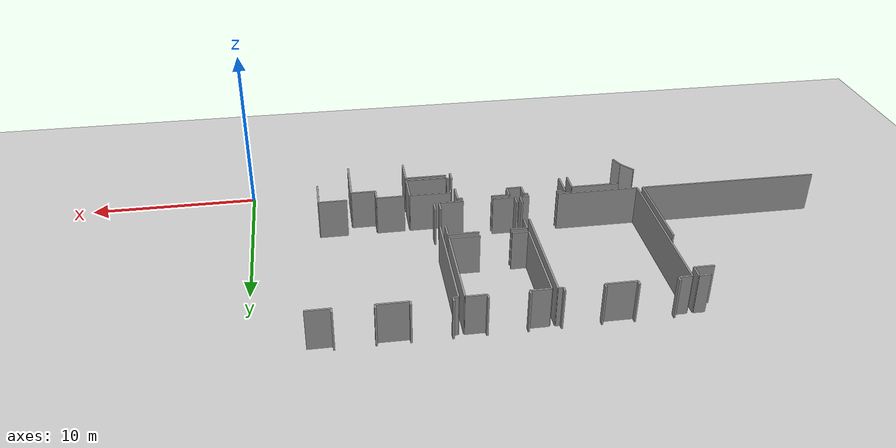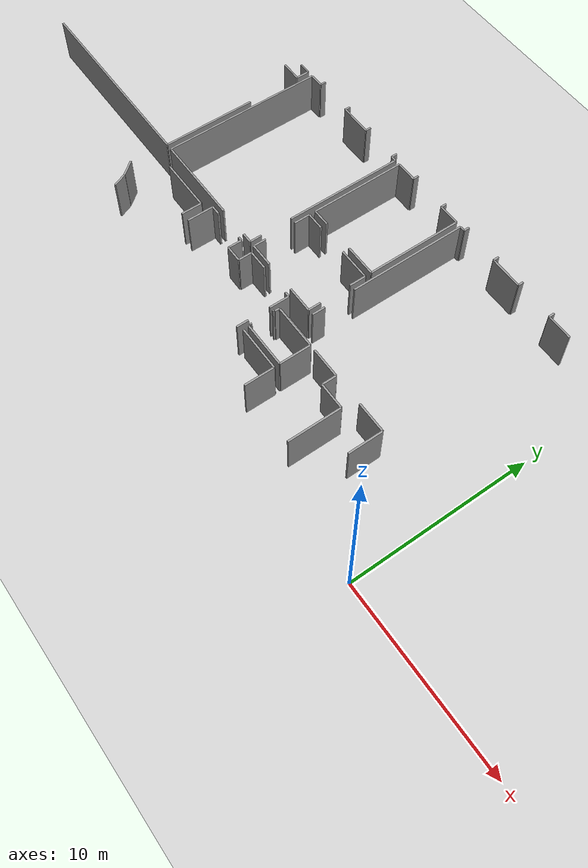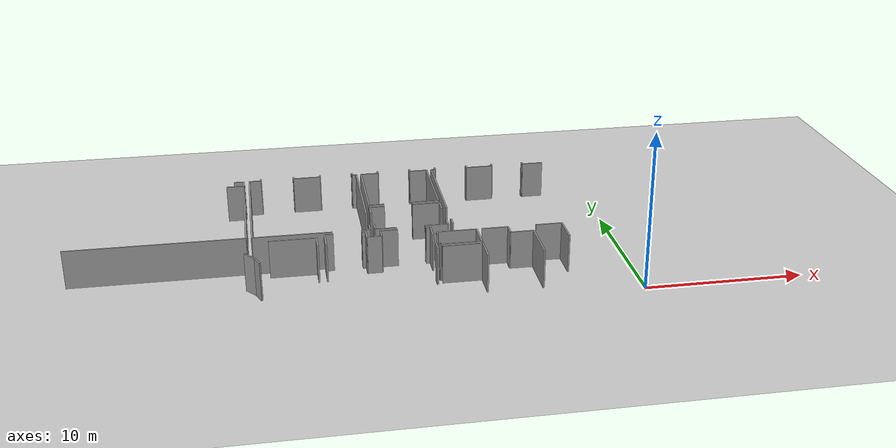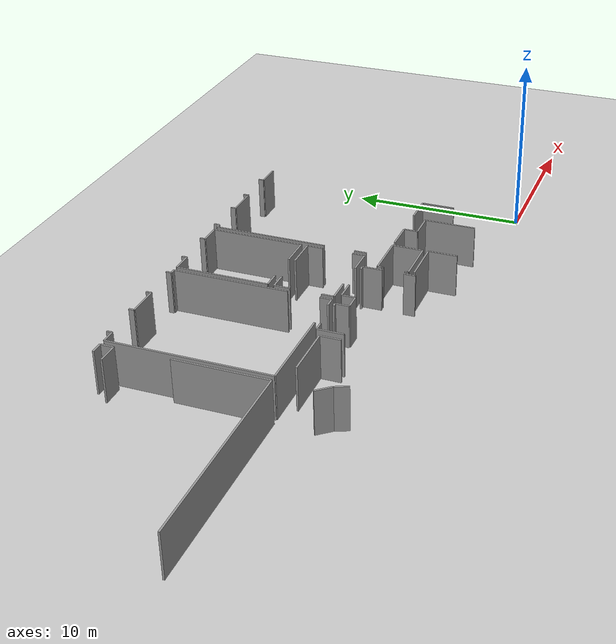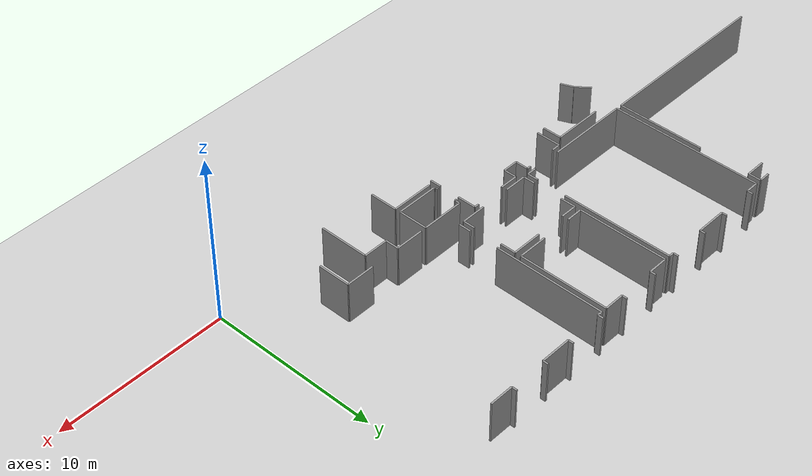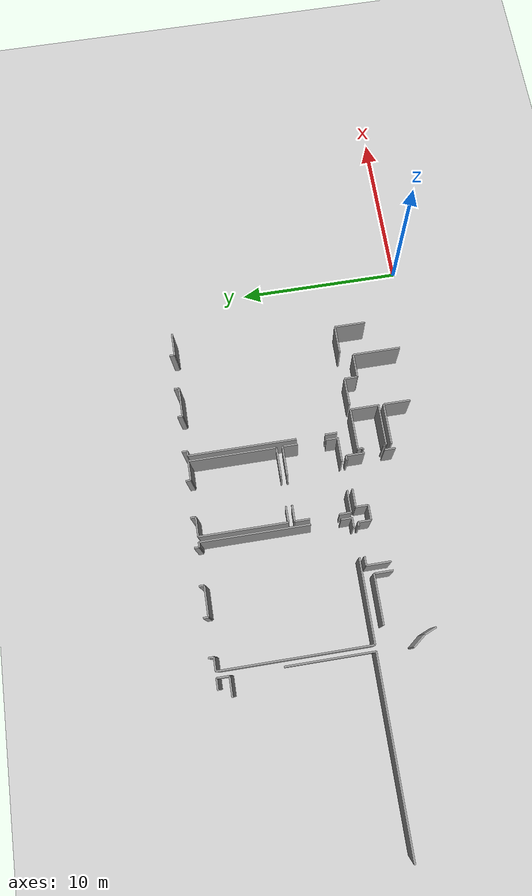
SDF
<sdf version="1.6">
 <world name="default">
  <model name="ground_plane">
   <static>1</static>
   <link name="link">
    <collision name="collision">
     <geometry><plane><normal>0 0 1</normal><size>100 100</size></plane></geometry>
     <surface><friction><ode><mu>100</mu><mu2>50</mu2></ode></friction></surface>
    </collision>
    <visual name="visual">
     <cast_shadows>0</cast_shadows>
     <geometry><plane><normal>0 0 1</normal><size>100 100</size></plane></geometry>
     <material>
      <script><uri>file://media/materials/scripts/gazebo.material</uri><name>Gazebo/Grey</name></script>
     </material>
    </visual>
   </link>
  </model>
  <model name="0510032270_A_40_1_104">
   <static>1</static>
   <link name="Wall_47">
    <collision name="Wall_47_Collision">
     <geometry><box><size>0.661016303036 0.1 2.5</size></box></geometry>
     <pose>0.330508151518 0 1.25 0 0 0</pose>
    </collision>
    <visual name="Wall_47_Visual">
     <pose>0.330508151518 0 1.25 0 0 0</pose>
     <geometry><box><size>0.661016303036 0.1 2.5</size></box></geometry>
     <material>
      <script><uri>file://media/materials/scripts/gazebo.material</uri><name>Gazebo/Grey</name></script>
      <ambient>1 1 1 1</ambient>
     </material>
    </visual>
    <pose>23.4142343418 -0.413230491632 0 0 0 0.0</pose>
   </link>
   <link name="Wall_48">
    <collision name="Wall_48_Collision">
     <geometry><box><size>0.73319186246 0.1 2.5</size></box></geometry>
     <pose>0.36659593123 0 1.25 0 0 0</pose>
    </collision>
    <visual name="Wall_48_Visual">
     <pose>0.36659593123 0 1.25 0 0 0</pose>
     <geometry><box><size>0.73319186246 0.1 2.5</size></box></geometry>
     <material>
      <script><uri>file://media/materials/scripts/gazebo.material</uri><name>Gazebo/Grey</name></script>
      <ambient>1 1 1 1</ambient>
     </material>
    </visual>
    <pose>24.0752506449 -0.413230491632 0 0 0 -1.57079632679</pose>
   </link>
   <link name="Wall_49">
    <collision name="Wall_49_Collision">
     <geometry><box><size>1.15951052772 0.1 2.5</size></box></geometry>
     <pose>0.57975526386 0 1.25 0 0 0</pose>
    </collision>
    <visual name="Wall_49_Visual">
     <pose>0.57975526386 0 1.25 0 0 0</pose>
     <geometry><box><size>1.15951052772 0.1 2.5</size></box></geometry>
     <material>
      <script><uri>file://media/materials/scripts/gazebo.material</uri><name>Gazebo/Grey</name></script>
      <ambient>1 1 1 1</ambient>
     </material>
    </visual>
    <pose>24.0752506449 -1.14642235409 0 0 0 3.14159265359</pose>
   </link>
   <link name="Wall_52">
    <collision name="Wall_52_Collision">
     <geometry><box><size>5.19791097501 0.1 2.5</size></box></geometry>
     <pose>2.5989554875 0 1.25 0 0 0</pose>
    </collision>
    <visual name="Wall_52_Visual">
     <pose>2.5989554875 0 1.25 0 0 0</pose>
     <geometry><box><size>5.19791097501 0.1 2.5</size></box></geometry>
     <material>
      <script><uri>file://media/materials/scripts/gazebo.material</uri><name>Gazebo/Grey</name></script>
      <ambient>1 1 1 1</ambient>
     </material>
    </visual>
    <pose>24.0824936148 -4.18783435201 0 0 0 -1.57079632679</pose>
   </link>
   <link name="Wall_53">
    <collision name="Wall_53_Collision">
     <geometry><box><size>10.9384093422 0.1 2.5</size></box></geometry>
     <pose>5.46920467108 0 1.25 0 0 0</pose>
    </collision>
    <visual name="Wall_53_Visual">
     <pose>5.46920467108 0 1.25 0 0 0</pose>
     <geometry><box><size>10.9384093422 0.1 2.5</size></box></geometry>
     <material>
      <script><uri>file://media/materials/scripts/gazebo.material</uri><name>Gazebo/Grey</name></script>
      <ambient>1 1 1 1</ambient>
     </material>
    </visual>
    <pose>24.0824936148 -9.38574532701 0 0 0 3.14159265359</pose>
   </link>
   <link name="Wall_148">
    <collision name="Wall_148_Collision">
     <geometry><box><size>0.954581897401 0.1 2.5</size></box></geometry>
     <pose>0.4772909487 0 1.25 0 0 0</pose>
    </collision>
    <visual name="Wall_148_Visual">
     <pose>0.4772909487 0 1.25 0 0 0</pose>
     <geometry><box><size>0.954581897401 0.1 2.5</size></box></geometry>
     <material>
      <script><uri>file://media/materials/scripts/gazebo.material</uri><name>Gazebo/Grey</name></script>
      <ambient>1 1 1 1</ambient>
     </material>
    </visual>
    <pose>23.9540262018 -11.498024067 0 0 0 -0.895182240225</pose>
   </link>
   <link name="Wall_149">
    <collision name="Wall_149_Collision">
     <geometry><box><size>0.768025617632 0.1 2.5</size></box></geometry>
     <pose>0.384012808816 0 1.25 0 0 0</pose>
    </collision>
    <visual name="Wall_149_Visual">
     <pose>0.384012808816 0 1.25 0 0 0</pose>
     <geometry><box><size>0.768025617632 0.1 2.5</size></box></geometry>
     <material>
      <script><uri>file://media/materials/scripts/gazebo.material</uri><name>Gazebo/Grey</name></script>
      <ambient>1 1 1 1</ambient>
     </material>
    </visual>
    <pose>24.5509994028 -12.242906337 0 0 0 -1.18024327878</pose>
   </link>
   <link name="Wall_166">
    <collision name="Wall_166_Collision">
     <geometry><box><size>8.96692377092 0.1 2.5</size></box></geometry>
     <pose>4.48346188546 0 1.25 0 0 0</pose>
    </collision>
    <visual name="Wall_166_Visual">
     <pose>4.48346188546 0 1.25 0 0 0</pose>
     <geometry><box><size>8.96692377092 0.1 2.5</size></box></geometry>
     <material>
      <script><uri>file://media/materials/scripts/gazebo.material</uri><name>Gazebo/Grey</name></script>
      <ambient>1 1 1 1</ambient>
     </material>
    </visual>
    <pose>24.4399405314 -9.38955741642 0 0 0 1.57079632679</pose>
   </link>
   <link name="Wall_167">
    <collision name="Wall_167_Collision">
     <geometry><box><size>0.775251915575 0.1 2.5</size></box></geometry>
     <pose>0.387625957787 0 1.25 0 0 0</pose>
    </collision>
    <visual name="Wall_167_Visual">
     <pose>0.387625957787 0 1.25 0 0 0</pose>
     <geometry><box><size>0.775251915575 0.1 2.5</size></box></geometry>
     <material>
      <script><uri>file://media/materials/scripts/gazebo.material</uri><name>Gazebo/Grey</name></script>
      <ambient>1 1 1 1</ambient>
     </material>
    </visual>
    <pose>24.4399405314 -0.422633645501 0 0 0 0.0</pose>
   </link>
   <link name="Wall_168">
    <collision name="Wall_168_Collision">
     <geometry><box><size>0.313989097424 0.1 2.5</size></box></geometry>
     <pose>0.156994548712 0 1.25 0 0 0</pose>
    </collision>
    <visual name="Wall_168_Visual">
     <pose>0.156994548712 0 1.25 0 0 0</pose>
     <geometry><box><size>0.313989097424 0.1 2.5</size></box></geometry>
     <material>
      <script><uri>file://media/materials/scripts/gazebo.material</uri><name>Gazebo/Grey</name></script>
      <ambient>1 1 1 1</ambient>
     </material>
    </visual>
    <pose>25.215192447 -0.422633645501 0 0 0 1.57079632679</pose>
   </link>
   <link name="Wall_169">
    <collision name="Wall_169_Collision">
     <geometry><box><size>0.300773854149 0.1 2.5</size></box></geometry>
     <pose>0.150386927075 0 1.25 0 0 0</pose>
    </collision>
    <visual name="Wall_169_Visual">
     <pose>0.150386927075 0 1.25 0 0 0</pose>
     <geometry><box><size>0.300773854149 0.1 2.5</size></box></geometry>
     <material>
      <script><uri>file://media/materials/scripts/gazebo.material</uri><name>Gazebo/Grey</name></script>
      <ambient>1 1 1 1</ambient>
     </material>
    </visual>
    <pose>27.4267125812 -0.108644548077 0 0 0 -1.57079632679</pose>
   </link>
   <link name="Wall_170">
    <collision name="Wall_170_Collision">
     <geometry><box><size>1.79549411032 0.1 2.5</size></box></geometry>
     <pose>0.897747055161 0 1.25 0 0 0</pose>
    </collision>
    <visual name="Wall_170_Visual">
     <pose>0.897747055161 0 1.25 0 0 0</pose>
     <geometry><box><size>1.79549411032 0.1 2.5</size></box></geometry>
     <material>
      <script><uri>file://media/materials/scripts/gazebo.material</uri><name>Gazebo/Grey</name></script>
      <ambient>1 1 1 1</ambient>
     </material>
    </visual>
    <pose>27.4267125812 -0.409418402226 0 0 0 0.0</pose>
   </link>
   <link name="Wall_171">
    <collision name="Wall_171_Collision">
     <geometry><box><size>0.301663341678 0.1 2.5</size></box></geometry>
     <pose>0.150831670839 0 1.25 0 0 0</pose>
    </collision>
    <visual name="Wall_171_Visual">
     <pose>0.150831670839 0 1.25 0 0 0</pose>
     <geometry><box><size>0.301663341678 0.1 2.5</size></box></geometry>
     <material>
      <script><uri>file://media/materials/scripts/gazebo.material</uri><name>Gazebo/Grey</name></script>
      <ambient>1 1 1 1</ambient>
     </material>
    </visual>
    <pose>29.2222066915 -0.409418402226 0 0 0 1.57079632679</pose>
   </link>
   <link name="Wall_172">
    <collision name="Wall_172_Collision">
     <geometry><box><size>0.301282132737 0.1 2.5</size></box></geometry>
     <pose>0.150641066368 0 1.25 0 0 0</pose>
    </collision>
    <visual name="Wall_172_Visual">
     <pose>0.150641066368 0 1.25 0 0 0</pose>
     <geometry><box><size>0.301282132737 0.1 2.5</size></box></geometry>
     <material>
      <script><uri>file://media/materials/scripts/gazebo.material</uri><name>Gazebo/Grey</name></script>
      <ambient>1 1 1 1</ambient>
     </material>
    </visual>
    <pose>31.4261026469 -0.107755060549 0 0 0 -1.57079632679</pose>
   </link>
   <link name="Wall_173">
    <collision name="Wall_173_Collision">
     <geometry><box><size>0.297724182624 0.1 2.5</size></box></geometry>
     <pose>0.148862091312 0 1.25 0 0 0</pose>
    </collision>
    <visual name="Wall_173_Visual">
     <pose>0.148862091312 0 1.25 0 0 0</pose>
     <geometry><box><size>0.297724182624 0.1 2.5</size></box></geometry>
     <material>
      <script><uri>file://media/materials/scripts/gazebo.material</uri><name>Gazebo/Grey</name></script>
      <ambient>1 1 1 1</ambient>
     </material>
    </visual>
    <pose>31.4261026469 -0.409037193286 0 0 0 0.0</pose>
   </link>
   <link name="Wall_174">
    <collision name="Wall_174_Collision">
     <geometry><box><size>6.54675527657 0.1 2.5</size></box></geometry>
     <pose>3.27337763828 0 1.25 0 0 0</pose>
    </collision>
    <visual name="Wall_174_Visual">
     <pose>3.27337763828 0 1.25 0 0 0</pose>
     <geometry><box><size>6.54675527657 0.1 2.5</size></box></geometry>
     <material>
      <script><uri>file://media/materials/scripts/gazebo.material</uri><name>Gazebo/Grey</name></script>
      <ambient>1 1 1 1</ambient>
     </material>
    </visual>
    <pose>31.7238268295 -0.409037193286 0 0 0 -1.57079632679</pose>
   </link>
   <link name="Wall_175">
    <collision name="Wall_175_Collision">
     <geometry><box><size>0.659237327979 0.1 2.5</size></box></geometry>
     <pose>0.32961866399 0 1.25 0 0 0</pose>
    </collision>
    <visual name="Wall_175_Visual">
     <pose>0.32961866399 0 1.25 0 0 0</pose>
     <geometry><box><size>0.659237327979 0.1 2.5</size></box></geometry>
     <material>
      <script><uri>file://media/materials/scripts/gazebo.material</uri><name>Gazebo/Grey</name></script>
      <ambient>1 1 1 1</ambient>
     </material>
    </visual>
    <pose>31.7238268295 -8.73476752608 0 0 0 -1.57079632679</pose>
   </link>
   <link name="Wall_176">
    <collision name="Wall_176_Collision">
     <geometry><box><size>0.567747182231 0.1 2.5</size></box></geometry>
     <pose>0.283873591115 0 1.25 0 0 0</pose>
    </collision>
    <visual name="Wall_176_Visual">
     <pose>0.283873591115 0 1.25 0 0 0</pose>
     <geometry><box><size>0.567747182231 0.1 2.5</size></box></geometry>
     <material>
      <script><uri>file://media/materials/scripts/gazebo.material</uri><name>Gazebo/Grey</name></script>
      <ambient>1 1 1 1</ambient>
     </material>
    </visual>
    <pose>31.7238268295 -9.39400485406 0 0 0 3.14159265359</pose>
   </link>
   <link name="Wall_177">
    <collision name="Wall_177_Collision">
     <geometry><box><size>4.93373518369 0.1 2.5</size></box></geometry>
     <pose>2.46686759185 0 1.25 0 0 0</pose>
    </collision>
    <visual name="Wall_177_Visual">
     <pose>2.46686759185 0 1.25 0 0 0</pose>
     <geometry><box><size>4.93373518369 0.1 2.5</size></box></geometry>
     <material>
      <script><uri>file://media/materials/scripts/gazebo.material</uri><name>Gazebo/Grey</name></script>
      <ambient>1 1 1 1</ambient>
     </material>
    </visual>
    <pose>29.3736737106 -9.39400485406 0 0 0 3.14069121927</pose>
   </link>
   <link name="Wall_178">
    <collision name="Wall_178_Collision">
     <geometry><box><size>0.976530236222 0.1 2.5</size></box></geometry>
     <pose>0.488265118111 0 1.25 0 0 0</pose>
    </collision>
    <visual name="Wall_178_Visual">
     <pose>0.488265118111 0 1.25 0 0 0</pose>
     <geometry><box><size>0.976530236222 0.1 2.5</size></box></geometry>
     <material>
      <script><uri>file://media/materials/scripts/gazebo.material</uri><name>Gazebo/Grey</name></script>
      <ambient>1 1 1 1</ambient>
     </material>
    </visual>
    <pose>32.0364181608 -6.06249285233 0 0 0 0.0</pose>
   </link>
   <link name="Wall_179">
    <collision name="Wall_179_Collision">
     <geometry><box><size>1.79041132445 0.1 2.5</size></box></geometry>
     <pose>0.895205662223 0 1.25 0 0 0</pose>
    </collision>
    <visual name="Wall_179_Visual">
     <pose>0.895205662223 0 1.25 0 0 0</pose>
     <geometry><box><size>1.79041132445 0.1 2.5</size></box></geometry>
     <material>
      <script><uri>file://media/materials/scripts/gazebo.material</uri><name>Gazebo/Grey</name></script>
      <ambient>1 1 1 1</ambient>
     </material>
    </visual>
    <pose>34.8277570937 -6.06249285233 0 0 0 0.0</pose>
   </link>
   <link name="Wall_180">
    <collision name="Wall_180_Collision">
     <geometry><box><size>0.907658487617 0.1 2.5</size></box></geometry>
     <pose>0.453829243809 0 1.25 0 0 0</pose>
    </collision>
    <visual name="Wall_180_Visual">
     <pose>0.453829243809 0 1.25 0 0 0</pose>
     <geometry><box><size>0.907658487617 0.1 2.5</size></box></geometry>
     <material>
      <script><uri>file://media/materials/scripts/gazebo.material</uri><name>Gazebo/Grey</name></script>
      <ambient>1 1 1 1</ambient>
     </material>
    </visual>
    <pose>36.6181684181 -6.06249285233 0 0 0 -1.57079632679</pose>
   </link>
   <link name="Wall_181">
    <collision name="Wall_181_Collision">
     <geometry><box><size>0.692656645107 0.1 2.5</size></box></geometry>
     <pose>0.346328322554 0 1.25 0 0 0</pose>
    </collision>
    <visual name="Wall_181_Visual">
     <pose>0.346328322554 0 1.25 0 0 0</pose>
     <geometry><box><size>0.692656645107 0.1 2.5</size></box></geometry>
     <material>
      <script><uri>file://media/materials/scripts/gazebo.material</uri><name>Gazebo/Grey</name></script>
      <ambient>1 1 1 1</ambient>
     </material>
    </visual>
    <pose>36.6181684181 -8.70274597507 0 0 0 -1.57079632679</pose>
   </link>
   <link name="Wall_182">
    <collision name="Wall_182_Collision">
     <geometry><box><size>1.4568535014 0.1 2.5</size></box></geometry>
     <pose>0.728426750702 0 1.25 0 0 0</pose>
    </collision>
    <visual name="Wall_182_Visual">
     <pose>0.728426750702 0 1.25 0 0 0</pose>
     <geometry><box><size>1.4568535014 0.1 2.5</size></box></geometry>
     <material>
      <script><uri>file://media/materials/scripts/gazebo.material</uri><name>Gazebo/Grey</name></script>
      <ambient>1 1 1 1</ambient>
     </material>
    </visual>
    <pose>36.6181684181 -9.39540262018 0 0 0 3.14159265359</pose>
   </link>
   <link name="Wall_183">
    <collision name="Wall_183_Collision">
     <geometry><box><size>1.33346887429 0.1 2.5</size></box></geometry>
     <pose>0.666734437145 0 1.25 0 0 0</pose>
    </collision>
    <visual name="Wall_183_Visual">
     <pose>0.666734437145 0 1.25 0 0 0</pose>
     <geometry><box><size>1.33346887429 0.1 2.5</size></box></geometry>
     <material>
      <script><uri>file://media/materials/scripts/gazebo.material</uri><name>Gazebo/Grey</name></script>
      <ambient>1 1 1 1</ambient>
     </material>
    </visual>
    <pose>33.3739532638 -9.39540262018 0 0 0 3.14159265359</pose>
   </link>
   <link name="Wall_184">
    <collision name="Wall_184_Collision">
     <geometry><box><size>0.694943898751 0.1 2.5</size></box></geometry>
     <pose>0.347471949375 0 1.25 0 0 0</pose>
    </collision>
    <visual name="Wall_184_Visual">
     <pose>0.347471949375 0 1.25 0 0 0</pose>
     <geometry><box><size>0.694943898751 0.1 2.5</size></box></geometry>
     <material>
      <script><uri>file://media/materials/scripts/gazebo.material</uri><name>Gazebo/Grey</name></script>
      <ambient>1 1 1 1</ambient>
     </material>
    </visual>
    <pose>32.0404843895 -9.39540262018 0 0 0 1.57079632679</pose>
   </link>
   <link name="Wall_185">
    <collision name="Wall_185_Collision">
     <geometry><box><size>0.893308872047 0.1 2.5</size></box></geometry>
     <pose>0.446654436023 0 1.25 0 0 0</pose>
    </collision>
    <visual name="Wall_185_Visual">
     <pose>0.446654436023 0 1.25 0 0 0</pose>
     <geometry><box><size>0.893308872047 0.1 2.5</size></box></geometry>
     <material>
      <script><uri>file://media/materials/scripts/gazebo.material</uri><name>Gazebo/Grey</name></script>
      <ambient>1 1 1 1</ambient>
     </material>
    </visual>
    <pose>32.0404843895 -6.95579246985 0 0 0 1.5753482157</pose>
   </link>
   <link name="Wall_186">
    <collision name="Wall_186_Collision">
     <geometry><box><size>5.27720243465 0.1 2.5</size></box></geometry>
     <pose>2.63860121733 0 1.25 0 0 0</pose>
    </collision>
    <visual name="Wall_186_Visual">
     <pose>2.63860121733 0 1.25 0 0 0</pose>
     <geometry><box><size>5.27720243465 0.1 2.5</size></box></geometry>
     <material>
      <script><uri>file://media/materials/scripts/gazebo.material</uri><name>Gazebo/Grey</name></script>
      <ambient>1 1 1 1</ambient>
     </material>
    </visual>
    <pose>32.0404843895 -5.69716761757 0 0 0 1.57079632679</pose>
   </link>
   <link name="Wall_187">
    <collision name="Wall_187_Collision">
     <geometry><box><size>1.17183628347 0.1 2.5</size></box></geometry>
     <pose>0.585918141733 0 1.25 0 0 0</pose>
    </collision>
    <visual name="Wall_187_Visual">
     <pose>0.585918141733 0 1.25 0 0 0</pose>
     <geometry><box><size>1.17183628347 0.1 2.5</size></box></geometry>
     <material>
      <script><uri>file://media/materials/scripts/gazebo.material</uri><name>Gazebo/Grey</name></script>
      <ambient>1 1 1 1</ambient>
     </material>
    </visual>
    <pose>32.0404843895 -0.419965182917 0 0 0 0.0</pose>
   </link>
   <link name="Wall_188">
    <collision name="Wall_188_Collision">
     <geometry><box><size>0.310177008018 0.1 2.5</size></box></geometry>
     <pose>0.155088504009 0 1.25 0 0 0</pose>
    </collision>
    <visual name="Wall_188_Visual">
     <pose>0.155088504009 0 1.25 0 0 0</pose>
     <geometry><box><size>0.310177008018 0.1 2.5</size></box></geometry>
     <material>
      <script><uri>file://media/materials/scripts/gazebo.material</uri><name>Gazebo/Grey</name></script>
      <ambient>1 1 1 1</ambient>
     </material>
    </visual>
    <pose>33.212320673 -0.419965182917 0 0 0 1.57079632679</pose>
   </link>
   <link name="Wall_189">
    <collision name="Wall_189_Collision">
     <geometry><box><size>0.302934038146 0.1 2.5</size></box></geometry>
     <pose>0.151467019073 0 1.25 0 0 0</pose>
    </collision>
    <visual name="Wall_189_Visual">
     <pose>0.151467019073 0 1.25 0 0 0</pose>
     <geometry><box><size>0.302934038146 0.1 2.5</size></box></geometry>
     <material>
      <script><uri>file://media/materials/scripts/gazebo.material</uri><name>Gazebo/Grey</name></script>
      <ambient>1 1 1 1</ambient>
     </material>
    </visual>
    <pose>35.4333710307 -0.109788174899 0 0 0 -1.57079632679</pose>
   </link>
   <link name="Wall_190">
    <collision name="Wall_190_Collision">
     <geometry><box><size>1.17780855687 0.1 2.5</size></box></geometry>
     <pose>0.588904278435 0 1.25 0 0 0</pose>
    </collision>
    <visual name="Wall_190_Visual">
     <pose>0.588904278435 0 1.25 0 0 0</pose>
     <geometry><box><size>1.17780855687 0.1 2.5</size></box></geometry>
     <material>
      <script><uri>file://media/materials/scripts/gazebo.material</uri><name>Gazebo/Grey</name></script>
      <ambient>1 1 1 1</ambient>
     </material>
    </visual>
    <pose>35.4333710307 -0.412722213045 0 0 0 0.0</pose>
   </link>
   <link name="Wall_191">
    <collision name="Wall_191_Collision">
     <geometry><box><size>5.27682122571 0.1 2.5</size></box></geometry>
     <pose>2.63841061286 0 1.25 0 0 0</pose>
    </collision>
    <visual name="Wall_191_Visual">
     <pose>2.63841061286 0 1.25 0 0 0</pose>
     <geometry><box><size>5.27682122571 0.1 2.5</size></box></geometry>
     <material>
      <script><uri>file://media/materials/scripts/gazebo.material</uri><name>Gazebo/Grey</name></script>
      <ambient>1 1 1 1</ambient>
     </material>
    </visual>
    <pose>36.6111795875 -0.412722213045 0 0 0 -1.57079632679</pose>
   </link>
   <link name="Wall_192">
    <collision name="Wall_192_Collision">
     <geometry><box><size>1.77783142941 0.1 2.5</size></box></geometry>
     <pose>0.888915714703 0 1.25 0 0 0</pose>
    </collision>
    <visual name="Wall_192_Visual">
     <pose>0.888915714703 0 1.25 0 0 0</pose>
     <geometry><box><size>1.77783142941 0.1 2.5</size></box></geometry>
     <material>
      <script><uri>file://media/materials/scripts/gazebo.material</uri><name>Gazebo/Grey</name></script>
      <ambient>1 1 1 1</ambient>
     </material>
    </visual>
    <pose>36.6111795875 -5.68954343876 0 0 0 3.14159265359</pose>
   </link>
   <link name="Wall_193">
    <collision name="Wall_193_Collision">
     <geometry><box><size>0.967919528043 0.1 2.5</size></box></geometry>
     <pose>0.483959764022 0 1.25 0 0 0</pose>
    </collision>
    <visual name="Wall_193_Visual">
     <pose>0.483959764022 0 1.25 0 0 0</pose>
     <geometry><box><size>0.967919528043 0.1 2.5</size></box></geometry>
     <material>
      <script><uri>file://media/materials/scripts/gazebo.material</uri><name>Gazebo/Grey</name></script>
      <ambient>1 1 1 1</ambient>
     </material>
    </visual>
    <pose>33.0083738897 -5.68954343876 0 0 0 -3.13371569953</pose>
   </link>
   <link name="Wall_194">
    <collision name="Wall_194_Collision">
     <geometry><box><size>0.281840476765 0.1 2.5</size></box></geometry>
     <pose>0.140920238383 0 1.25 0 0 0</pose>
    </collision>
    <visual name="Wall_194_Visual">
     <pose>0.140920238383 0 1.25 0 0 0</pose>
     <geometry><box><size>0.281840476765 0.1 2.5</size></box></geometry>
     <material>
      <script><uri>file://media/materials/scripts/gazebo.material</uri><name>Gazebo/Grey</name></script>
      <ambient>1 1 1 1</ambient>
     </material>
    </visual>
    <pose>36.9432125748 -0.424158481264 0 0 0 0.0</pose>
   </link>
   <link name="Wall_195">
    <collision name="Wall_195_Collision">
     <geometry><box><size>0.320088440474 0.1 2.5</size></box></geometry>
     <pose>0.160044220237 0 1.25 0 0 0</pose>
    </collision>
    <visual name="Wall_195_Visual">
     <pose>0.160044220237 0 1.25 0 0 0</pose>
     <geometry><box><size>0.320088440474 0.1 2.5</size></box></geometry>
     <material>
      <script><uri>file://media/materials/scripts/gazebo.material</uri><name>Gazebo/Grey</name></script>
      <ambient>1 1 1 1</ambient>
     </material>
    </visual>
    <pose>37.2250530516 -0.424158481264 0 0 0 1.57079632679</pose>
   </link>
   <link name="Wall_196">
    <collision name="Wall_196_Collision">
     <geometry><box><size>0.309160450843 0.1 2.5</size></box></geometry>
     <pose>0.154580225422 0 1.25 0 0 0</pose>
    </collision>
    <visual name="Wall_196_Visual">
     <pose>0.154580225422 0 1.25 0 0 0</pose>
     <geometry><box><size>0.309160450843 0.1 2.5</size></box></geometry>
     <material>
      <script><uri>file://media/materials/scripts/gazebo.material</uri><name>Gazebo/Grey</name></script>
      <ambient>1 1 1 1</ambient>
     </material>
    </visual>
    <pose>39.4339047232 -0.104070040789 0 0 0 -1.57079632679</pose>
   </link>
   <link name="Wall_197">
    <collision name="Wall_197_Collision">
     <geometry><box><size>1.79892499079 0.1 2.5</size></box></geometry>
     <pose>0.899462495394 0 1.25 0 0 0</pose>
    </collision>
    <visual name="Wall_197_Visual">
     <pose>0.899462495394 0 1.25 0 0 0</pose>
     <geometry><box><size>1.79892499079 0.1 2.5</size></box></geometry>
     <material>
      <script><uri>file://media/materials/scripts/gazebo.material</uri><name>Gazebo/Grey</name></script>
      <ambient>1 1 1 1</ambient>
     </material>
    </visual>
    <pose>39.4339047232 -0.413230491632 0 0 0 0.0</pose>
   </link>
   <link name="Wall_198">
    <collision name="Wall_198_Collision">
     <geometry><box><size>0.303442316734 0.1 2.5</size></box></geometry>
     <pose>0.151721158367 0 1.25 0 0 0</pose>
    </collision>
    <visual name="Wall_198_Visual">
     <pose>0.151721158367 0 1.25 0 0 0</pose>
     <geometry><box><size>0.303442316734 0.1 2.5</size></box></geometry>
     <material>
      <script><uri>file://media/materials/scripts/gazebo.material</uri><name>Gazebo/Grey</name></script>
      <ambient>1 1 1 1</ambient>
     </material>
    </visual>
    <pose>41.232829714 -0.413230491632 0 0 0 1.57079632679</pose>
   </link>
   <link name="Wall_199">
    <collision name="Wall_199_Collision">
     <geometry><box><size>0.306110779318 0.1 2.5</size></box></geometry>
     <pose>0.153055389659 0 1.25 0 0 0</pose>
    </collision>
    <visual name="Wall_199_Visual">
     <pose>0.153055389659 0 1.25 0 0 0</pose>
     <geometry><box><size>0.306110779318 0.1 2.5</size></box></geometry>
     <material>
      <script><uri>file://media/materials/scripts/gazebo.material</uri><name>Gazebo/Grey</name></script>
      <ambient>1 1 1 1</ambient>
     </material>
    </visual>
    <pose>43.4270683762 -0.109788174899 0 0 0 -1.57079632679</pose>
   </link>
   <link name="Wall_200">
    <collision name="Wall_200_Collision">
     <geometry><box><size>1.4039925283 0.1 2.5</size></box></geometry>
     <pose>0.701996264152 0 1.25 0 0 0</pose>
    </collision>
    <visual name="Wall_200_Visual">
     <pose>0.701996264152 0 1.25 0 0 0</pose>
     <geometry><box><size>1.4039925283 0.1 2.5</size></box></geometry>
     <material>
      <script><uri>file://media/materials/scripts/gazebo.material</uri><name>Gazebo/Grey</name></script>
      <ambient>1 1 1 1</ambient>
     </material>
    </visual>
    <pose>43.4270683762 -0.415898954217 0 0 0 0.0</pose>
   </link>
   <link name="Wall_203">
    <collision name="Wall_203_Collision">
     <geometry><box><size>0.719341270951 0.1 2.5</size></box></geometry>
     <pose>0.359670635475 0 1.25 0 0 0</pose>
    </collision>
    <visual name="Wall_203_Visual">
     <pose>0.359670635475 0 1.25 0 0 0</pose>
     <geometry><box><size>0.719341270951 0.1 2.5</size></box></geometry>
     <material>
      <script><uri>file://media/materials/scripts/gazebo.material</uri><name>Gazebo/Grey</name></script>
      <ambient>1 1 1 1</ambient>
     </material>
    </visual>
    <pose>36.9346989085 -9.40531405263 0 0 0 1.57079632679</pose>
   </link>
   <link name="Wall_204">
    <collision name="Wall_204_Collision">
     <geometry><box><size>6.52172811314 0.1 2.5</size></box></geometry>
     <pose>3.26086405657 0 1.25 0 0 0</pose>
    </collision>
    <visual name="Wall_204_Visual">
     <pose>3.26086405657 0 1.25 0 0 0</pose>
     <geometry><box><size>6.52172811314 0.1 2.5</size></box></geometry>
     <material>
      <script><uri>file://media/materials/scripts/gazebo.material</uri><name>Gazebo/Grey</name></script>
      <ambient>1 1 1 1</ambient>
     </material>
    </visual>
    <pose>36.9346989085 -6.9458810374 0 0 0 1.56949089538</pose>
   </link>
   <link name="Wall_205">
    <collision name="Wall_205_Collision">
     <geometry><box><size>2.48751540719 0.1 2.5</size></box></geometry>
     <pose>1.2437577036 0 1.25 0 0 0</pose>
    </collision>
    <visual name="Wall_205_Visual">
     <pose>1.2437577036 0 1.25 0 0 0</pose>
     <geometry><box><size>2.48751540719 0.1 2.5</size></box></geometry>
     <material>
      <script><uri>file://media/materials/scripts/gazebo.material</uri><name>Gazebo/Grey</name></script>
      <ambient>1 1 1 1</ambient>
     </material>
    </visual>
    <pose>35.760702441 -10.4601191913 0 0 0 0.0</pose>
   </link>
   <link name="Wall_206">
    <collision name="Wall_206_Collision">
     <geometry><box><size>1.72979910289 0.1 2.5</size></box></geometry>
     <pose>0.864899551444 0 1.25 0 0 0</pose>
    </collision>
    <visual name="Wall_206_Visual">
     <pose>0.864899551444 0 1.25 0 0 0</pose>
     <geometry><box><size>1.72979910289 0.1 2.5</size></box></geometry>
     <material>
      <script><uri>file://media/materials/scripts/gazebo.material</uri><name>Gazebo/Grey</name></script>
      <ambient>1 1 1 1</ambient>
     </material>
    </visual>
    <pose>38.2482178482 -10.4601191913 0 0 0 -1.57079632679</pose>
   </link>
   <link name="Wall_207">
    <collision name="Wall_207_Collision">
     <geometry><box><size>2.50085772012 0.1 2.5</size></box></geometry>
     <pose>1.25042886006 0 1.25 0 0 0</pose>
    </collision>
    <visual name="Wall_207_Visual">
     <pose>1.25042886006 0 1.25 0 0 0</pose>
     <geometry><box><size>2.50085772012 0.1 2.5</size></box></geometry>
     <material>
      <script><uri>file://media/materials/scripts/gazebo.material</uri><name>Gazebo/Grey</name></script>
      <ambient>1 1 1 1</ambient>
     </material>
    </visual>
    <pose>38.2482178482 -12.1899182942 0 0 0 3.14159265359</pose>
   </link>
   <link name="Wall_208">
    <collision name="Wall_208_Collision">
     <geometry><box><size>0.0801809471771 0.1 2.5</size></box></geometry>
     <pose>0.0400904735886 0 1.25 0 0 0</pose>
    </collision>
    <visual name="Wall_208_Visual">
     <pose>0.0400904735886 0 1.25 0 0 0</pose>
     <geometry><box><size>0.0801809471771 0.1 2.5</size></box></geometry>
     <material>
      <script><uri>file://media/materials/scripts/gazebo.material</uri><name>Gazebo/Grey</name></script>
      <ambient>1 1 1 1</ambient>
     </material>
    </visual>
    <pose>35.7473601281 -12.1899182942 0 0 0 1.57079632679</pose>
   </link>
   <link name="Wall_209">
    <collision name="Wall_209_Collision">
     <geometry><box><size>0.0470157693432 0.1 2.5</size></box></geometry>
     <pose>0.0235078846716 0 1.25 0 0 0</pose>
    </collision>
    <visual name="Wall_209_Visual">
     <pose>0.0235078846716 0 1.25 0 0 0</pose>
     <geometry><box><size>0.0470157693432 0.1 2.5</size></box></geometry>
     <material>
      <script><uri>file://media/materials/scripts/gazebo.material</uri><name>Gazebo/Grey</name></script>
      <ambient>1 1 1 1</ambient>
     </material>
    </visual>
    <pose>35.7473601281 -12.109737347 0 0 0 3.14159265359</pose>
   </link>
   <link name="Wall_210">
    <collision name="Wall_210_Collision">
     <geometry><box><size>0.113091985717 0.1 2.5</size></box></geometry>
     <pose>0.0565459928587 0 1.25 0 0 0</pose>
    </collision>
    <visual name="Wall_210_Visual">
     <pose>0.0565459928587 0 1.25 0 0 0</pose>
     <geometry><box><size>0.113091985717 0.1 2.5</size></box></geometry>
     <material>
      <script><uri>file://media/materials/scripts/gazebo.material</uri><name>Gazebo/Grey</name></script>
      <ambient>1 1 1 1</ambient>
     </material>
    </visual>
    <pose>35.7003443587 -12.109737347 0 0 0 1.57079632679</pose>
   </link>
   <link name="Wall_211">
    <collision name="Wall_211_Collision">
     <geometry><box><size>0.0871697777552 0.1 2.5</size></box></geometry>
     <pose>0.0435848888776 0 1.25 0 0 0</pose>
    </collision>
    <visual name="Wall_211_Visual">
     <pose>0.0435848888776 0 1.25 0 0 0</pose>
     <geometry><box><size>0.0871697777552 0.1 2.5</size></box></geometry>
     <material>
      <script><uri>file://media/materials/scripts/gazebo.material</uri><name>Gazebo/Grey</name></script>
      <ambient>1 1 1 1</ambient>
     </material>
    </visual>
    <pose>35.7003443587 -10.8147705758 0 0 0 1.57079632679</pose>
   </link>
   <link name="Wall_212">
    <collision name="Wall_212_Collision">
     <geometry><box><size>0.0496842319275 0.1 2.5</size></box></geometry>
     <pose>0.0248421159638 0 1.25 0 0 0</pose>
    </collision>
    <visual name="Wall_212_Visual">
     <pose>0.0248421159638 0 1.25 0 0 0</pose>
     <geometry><box><size>0.0496842319275 0.1 2.5</size></box></geometry>
     <material>
      <script><uri>file://media/materials/scripts/gazebo.material</uri><name>Gazebo/Grey</name></script>
      <ambient>1 1 1 1</ambient>
     </material>
    </visual>
    <pose>35.7003443587 -10.727600798 0 0 0 0.0</pose>
   </link>
   <link name="Wall_213">
    <collision name="Wall_213_Collision">
     <geometry><box><size>0.267694491888 0.1 2.5</size></box></geometry>
     <pose>0.133847245944 0 1.25 0 0 0</pose>
    </collision>
    <visual name="Wall_213_Visual">
     <pose>0.133847245944 0 1.25 0 0 0</pose>
     <geometry><box><size>0.267694491888 0.1 2.5</size></box></geometry>
     <material>
      <script><uri>file://media/materials/scripts/gazebo.material</uri><name>Gazebo/Grey</name></script>
      <ambient>1 1 1 1</ambient>
     </material>
    </visual>
    <pose>35.7500285907 -10.727600798 0 0 0 1.53091250013</pose>
   </link>
   <link name="Wall_214">
    <collision name="Wall_214_Collision">
     <geometry><box><size>2.50149306835 0.1 2.5</size></box></geometry>
     <pose>1.25074653418 0 1.25 0 0 0</pose>
    </collision>
    <visual name="Wall_214_Visual">
     <pose>1.25074653418 0 1.25 0 0 0</pose>
     <geometry><box><size>2.50149306835 0.1 2.5</size></box></geometry>
     <material>
      <script><uri>file://media/materials/scripts/gazebo.material</uri><name>Gazebo/Grey</name></script>
      <ambient>1 1 1 1</ambient>
     </material>
    </visual>
    <pose>35.7594317445 -12.5032720434 0 0 0 0.0</pose>
   </link>
   <link name="Wall_215">
    <collision name="Wall_215_Collision">
     <geometry><box><size>1.64046914114 0.1 2.5</size></box></geometry>
     <pose>0.820234570568 0 1.25 0 0 0</pose>
    </collision>
    <visual name="Wall_215_Visual">
     <pose>0.820234570568 0 1.25 0 0 0</pose>
     <geometry><box><size>1.64046914114 0.1 2.5</size></box></geometry>
     <material>
      <script><uri>file://media/materials/scripts/gazebo.material</uri><name>Gazebo/Grey</name></script>
      <ambient>1 1 1 1</ambient>
     </material>
    </visual>
    <pose>38.2609248129 -12.5032720434 0 0 0 -1.57079632679</pose>
   </link>
   <link name="Wall_224">
    <collision name="Wall_224_Collision">
     <geometry><box><size>1.67554036367 0.1 2.5</size></box></geometry>
     <pose>0.837770181837 0 1.25 0 0 0</pose>
    </collision>
    <visual name="Wall_224_Visual">
     <pose>0.837770181837 0 1.25 0 0 0</pose>
     <geometry><box><size>1.67554036367 0.1 2.5</size></box></geometry>
     <material>
      <script><uri>file://media/materials/scripts/gazebo.material</uri><name>Gazebo/Grey</name></script>
      <ambient>1 1 1 1</ambient>
     </material>
    </visual>
    <pose>38.5723725174 -10.4597379824 0 0 0 0.0</pose>
   </link>
   <link name="Wall_225">
    <collision name="Wall_225_Collision">
     <geometry><box><size>0.791135621434 0.1 2.5</size></box></geometry>
     <pose>0.395567810717 0 1.25 0 0 0</pose>
    </collision>
    <visual name="Wall_225_Visual">
     <pose>0.395567810717 0 1.25 0 0 0</pose>
     <geometry><box><size>0.791135621434 0.1 2.5</size></box></geometry>
     <material>
      <script><uri>file://media/materials/scripts/gazebo.material</uri><name>Gazebo/Grey</name></script>
      <ambient>1 1 1 1</ambient>
     </material>
    </visual>
    <pose>40.2479128811 -10.4597379824 0 0 0 -1.57079632679</pose>
   </link>
   <link name="Wall_226">
    <collision name="Wall_226_Collision">
     <geometry><box><size>1.46130093904 0.1 2.5</size></box></geometry>
     <pose>0.730650469522 0 1.25 0 0 0</pose>
    </collision>
    <visual name="Wall_226_Visual">
     <pose>0.730650469522 0 1.25 0 0 0</pose>
     <geometry><box><size>1.46130093904 0.1 2.5</size></box></geometry>
     <material>
      <script><uri>file://media/materials/scripts/gazebo.material</uri><name>Gazebo/Grey</name></script>
      <ambient>1 1 1 1</ambient>
     </material>
    </visual>
    <pose>40.2479128811 -11.2508736038 0 0 0 0.0</pose>
   </link>
   <link name="Wall_227">
    <collision name="Wall_227_Collision">
     <geometry><box><size>2.92628689785 0.1 2.5</size></box></geometry>
     <pose>1.46314344892 0 1.25 0 0 0</pose>
    </collision>
    <visual name="Wall_227_Visual">
     <pose>1.46314344892 0 1.25 0 0 0</pose>
     <geometry><box><size>2.92628689785 0.1 2.5</size></box></geometry>
     <material>
      <script><uri>file://media/materials/scripts/gazebo.material</uri><name>Gazebo/Grey</name></script>
      <ambient>1 1 1 1</ambient>
     </material>
    </visual>
    <pose>41.7092138201 -11.2508736038 0 0 0 -1.57079632679</pose>
   </link>
   <link name="Wall_231">
    <collision name="Wall_231_Collision">
     <geometry><box><size>1.68494351754 0.1 2.5</size></box></geometry>
     <pose>0.842471758771 0 1.25 0 0 0</pose>
    </collision>
    <visual name="Wall_231_Visual">
     <pose>0.842471758771 0 1.25 0 0 0</pose>
     <geometry><box><size>1.68494351754 0.1 2.5</size></box></geometry>
     <material>
      <script><uri>file://media/materials/scripts/gazebo.material</uri><name>Gazebo/Grey</name></script>
      <ambient>1 1 1 1</ambient>
     </material>
    </visual>
    <pose>42.0224404996 -10.4607545396 0 0 0 0.0</pose>
   </link>
   <link name="Wall_232">
    <collision name="Wall_232_Collision">
     <geometry><box><size>1.89295652947 0.1 2.5</size></box></geometry>
     <pose>0.946478264737 0 1.25 0 0 0</pose>
    </collision>
    <visual name="Wall_232_Visual">
     <pose>0.946478264737 0 1.25 0 0 0</pose>
     <geometry><box><size>1.89295652947 0.1 2.5</size></box></geometry>
     <material>
      <script><uri>file://media/materials/scripts/gazebo.material</uri><name>Gazebo/Grey</name></script>
      <ambient>1 1 1 1</ambient>
     </material>
    </visual>
    <pose>43.7073840172 -10.4607545396 0 0 0 -1.57079632679</pose>
   </link>
   <link name="Wall_503">
    <collision name="Wall_503_Collision">
     <geometry><box><size>1.46676493386 0.1 2.5</size></box></geometry>
     <pose>0.73338246693 0 1.25 0 0 0</pose>
    </collision>
    <visual name="Wall_503_Visual">
     <pose>0.73338246693 0 1.25 0 0 0</pose>
     <geometry><box><size>1.46676493386 0.1 2.5</size></box></geometry>
     <material>
      <script><uri>file://media/materials/scripts/gazebo.material</uri><name>Gazebo/Grey</name></script>
      <ambient>1 1 1 1</ambient>
     </material>
    </visual>
    <pose>28.8655221927 -11.1648474529 0 0 0 1.57079632679</pose>
   </link>
   <link name="Wall_504">
    <collision name="Wall_504_Collision">
     <geometry><box><size>0.528482661347 0.1 2.5</size></box></geometry>
     <pose>0.264241330673 0 1.25 0 0 0</pose>
    </collision>
    <visual name="Wall_504_Visual">
     <pose>0.264241330673 0 1.25 0 0 0</pose>
     <geometry><box><size>0.528482661347 0.1 2.5</size></box></geometry>
     <material>
      <script><uri>file://media/materials/scripts/gazebo.material</uri><name>Gazebo/Grey</name></script>
      <ambient>1 1 1 1</ambient>
     </material>
    </visual>
    <pose>28.8655221927 -9.69808251903 0 0 0 0.0</pose>
   </link>
   <link name="Wall_505">
    <collision name="Wall_505_Collision">
     <geometry><box><size>0.241686468353 0.1 2.5</size></box></geometry>
     <pose>0.120843234177 0 1.25 0 0 0</pose>
    </collision>
    <visual name="Wall_505_Visual">
     <pose>0.120843234177 0 1.25 0 0 0</pose>
     <geometry><box><size>0.241686468353 0.1 2.5</size></box></geometry>
     <material>
      <script><uri>file://media/materials/scripts/gazebo.material</uri><name>Gazebo/Grey</name></script>
      <ambient>1 1 1 1</ambient>
     </material>
    </visual>
    <pose>31.1725987013 -9.69808251903 0 0 0 0.0</pose>
   </link>
   <link name="Wall_506">
    <collision name="Wall_506_Collision">
     <geometry><box><size>0.761655463359 0.1 2.5</size></box></geometry>
     <pose>0.38082773168 0 1.25 0 0 0</pose>
    </collision>
    <visual name="Wall_506_Visual">
     <pose>0.38082773168 0 1.25 0 0 0</pose>
     <geometry><box><size>0.761655463359 0.1 2.5</size></box></geometry>
     <material>
      <script><uri>file://media/materials/scripts/gazebo.material</uri><name>Gazebo/Grey</name></script>
      <ambient>1 1 1 1</ambient>
     </material>
    </visual>
    <pose>31.4142851697 -9.69808251903 0 0 0 -1.57079632679</pose>
   </link>
   <link name="Wall_507">
    <collision name="Wall_507_Collision">
     <geometry><box><size>0.900923796333 0.1 2.5</size></box></geometry>
     <pose>0.450461898166 0 1.25 0 0 0</pose>
    </collision>
    <visual name="Wall_507_Visual">
     <pose>0.450461898166 0 1.25 0 0 0</pose>
     <geometry><box><size>0.900923796333 0.1 2.5</size></box></geometry>
     <material>
      <script><uri>file://media/materials/scripts/gazebo.material</uri><name>Gazebo/Grey</name></script>
      <ambient>1 1 1 1</ambient>
     </material>
    </visual>
    <pose>31.4142851697 -10.4597379824 0 0 0 0.0</pose>
   </link>
   <link name="Wall_508">
    <collision name="Wall_508_Collision">
     <geometry><box><size>0.752633518431 0.1 2.5</size></box></geometry>
     <pose>0.376316759216 0 1.25 0 0 0</pose>
    </collision>
    <visual name="Wall_508_Visual">
     <pose>0.376316759216 0 1.25 0 0 0</pose>
     <geometry><box><size>0.752633518431 0.1 2.5</size></box></geometry>
     <material>
      <script><uri>file://media/materials/scripts/gazebo.material</uri><name>Gazebo/Grey</name></script>
      <ambient>1 1 1 1</ambient>
     </material>
    </visual>
    <pose>32.315208966 -10.4597379824 0 0 0 1.57079632679</pose>
   </link>
   <link name="Wall_509">
    <collision name="Wall_509_Collision">
     <geometry><box><size>1.09381552029 0.1 2.5</size></box></geometry>
     <pose>0.546907760143 0 1.25 0 0 0</pose>
    </collision>
    <visual name="Wall_509_Visual">
     <pose>0.546907760143 0 1.25 0 0 0</pose>
     <geometry><box><size>1.09381552029 0.1 2.5</size></box></geometry>
     <material>
      <script><uri>file://media/materials/scripts/gazebo.material</uri><name>Gazebo/Grey</name></script>
      <ambient>1 1 1 1</ambient>
     </material>
    </visual>
    <pose>32.315208966 -9.70710446396 0 0 0 0.0</pose>
   </link>
   <link name="Wall_510">
    <collision name="Wall_510_Collision">
     <geometry><box><size>0.281840476765 0.1 2.5</size></box></geometry>
     <pose>0.140920238383 0 1.25 0 0 0</pose>
    </collision>
    <visual name="Wall_510_Visual">
     <pose>0.140920238383 0 1.25 0 0 0</pose>
     <geometry><box><size>0.281840476765 0.1 2.5</size></box></geometry>
     <material>
      <script><uri>file://media/materials/scripts/gazebo.material</uri><name>Gazebo/Grey</name></script>
      <ambient>1 1 1 1</ambient>
     </material>
    </visual>
    <pose>35.1709722099 -9.70710446396 0 0 0 0.0</pose>
   </link>
   <link name="Wall_511">
    <collision name="Wall_511_Collision">
     <geometry><box><size>1.10893680826 0.1 2.5</size></box></geometry>
     <pose>0.554468404132 0 1.25 0 0 0</pose>
    </collision>
    <visual name="Wall_511_Visual">
     <pose>0.554468404132 0 1.25 0 0 0</pose>
     <geometry><box><size>1.10893680826 0.1 2.5</size></box></geometry>
     <material>
      <script><uri>file://media/materials/scripts/gazebo.material</uri><name>Gazebo/Grey</name></script>
      <ambient>1 1 1 1</ambient>
     </material>
    </visual>
    <pose>35.4528126866 -9.70710446396 0 0 0 -1.57079632679</pose>
   </link>
   <link name="Wall_512">
    <collision name="Wall_512_Collision">
     <geometry><box><size>0.659237327979 0.1 2.5</size></box></geometry>
     <pose>0.32961866399 0 1.25 0 0 0</pose>
    </collision>
    <visual name="Wall_512_Visual">
     <pose>0.32961866399 0 1.25 0 0 0</pose>
     <geometry><box><size>0.659237327979 0.1 2.5</size></box></geometry>
     <material>
      <script><uri>file://media/materials/scripts/gazebo.material</uri><name>Gazebo/Grey</name></script>
      <ambient>1 1 1 1</ambient>
     </material>
    </visual>
    <pose>35.4528126866 -12.0253631015 0 0 0 -1.57079632679</pose>
   </link>
   <link name="Wall_565">
    <collision name="Wall_565_Collision">
     <geometry><box><size>2.93302158913 0.1 2.5</size></box></geometry>
     <pose>1.46651079457 0 1.25 0 0 0</pose>
    </collision>
    <visual name="Wall_565_Visual">
     <pose>1.46651079457 0 1.25 0 0 0</pose>
     <geometry><box><size>2.93302158913 0.1 2.5</size></box></geometry>
     <material>
      <script><uri>file://media/materials/scripts/gazebo.material</uri><name>Gazebo/Grey</name></script>
      <ambient>1 1 1 1</ambient>
     </material>
    </visual>
    <pose>25.4115150514 -10.0594685947 0 0 0 0.0</pose>
   </link>
   <link name="Wall_566">
    <collision name="Wall_566_Collision">
     <geometry><box><size>1.132063484 0.1 2.5</size></box></geometry>
     <pose>0.566031741998 0 1.25 0 0 0</pose>
    </collision>
    <visual name="Wall_566_Visual">
     <pose>0.566031741998 0 1.25 0 0 0</pose>
     <geometry><box><size>1.132063484 0.1 2.5</size></box></geometry>
     <material>
      <script><uri>file://media/materials/scripts/gazebo.material</uri><name>Gazebo/Grey</name></script>
      <ambient>1 1 1 1</ambient>
     </material>
    </visual>
    <pose>28.3445366405 -10.0594685947 0 0 0 -1.57079632679</pose>
   </link>
   <pose>-47.8 15.2142705567 0 0 0 0</pose>
  </model>
 </world>
</sdf>
